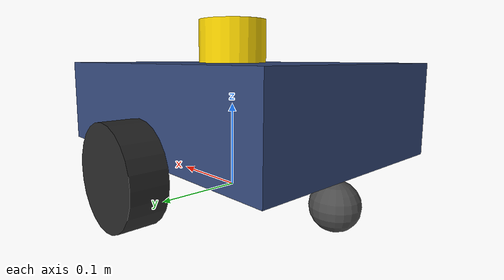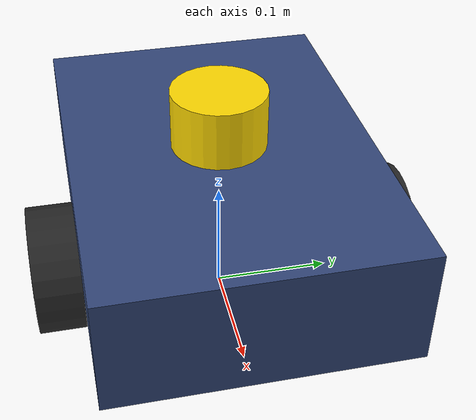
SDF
<?xml version="1.0" ?>
<sdf version="1.6">
  <model name="brutus_robot">

    <!-- ── ANA GÖVDE (CHASSIS) ──────────────────────────────── -->
    <link name="base_link">
      <pose>0 0 0.1 0 0 0</pose>

      <inertial>
        <mass>1.5</mass>
        <inertia>
          <ixx>0.0281</ixx><ixy>0</ixy><ixz>0</ixz>
          <iyy>0.0340</iyy><iyz>0</iyz>
          <izz>0.0540</izz>
        </inertia>
      </inertial>

      <collision name="chassis_collision">
        <geometry><box><size>0.35 0.25 0.10</size></box></geometry>
      </collision>

      <visual name="chassis_visual">
        <geometry><box><size>0.35 0.25 0.10</size></box></geometry>
        <material>
          <!-- Koyu gri-mavi renk - "Brutus" teması -->
          <ambient>0.15 0.20 0.35 1</ambient>
          <diffuse>0.20 0.28 0.48 1</diffuse>
          <specular>0.4 0.4 0.5 1</specular>
        </material>
      </visual>
    </link>

    <!-- ── SOL TEKERLEK ─────────────────────────────────────── -->
    <link name="left_wheel">
      <pose>0.0 0.145 0.04 -1.5707 0 0</pose>

      <inertial>
        <mass>0.25</mass>
        <inertia>
          <ixx>0.000244</ixx><ixy>0</ixy><ixz>0</ixz>
          <iyy>0.000244</iyy><iyz>0</iyz>
          <izz>0.000469</izz>
        </inertia>
      </inertial>

      <collision name="collision">
        <geometry><cylinder><radius>0.055</radius><length>0.04</length></cylinder></geometry>
        <surface><friction><ode><mu>1.0</mu><mu2>1.0</mu2></ode></friction></surface>
      </collision>

      <visual name="visual">
        <geometry><cylinder><radius>0.055</radius><length>0.04</length></cylinder></geometry>
        <material>
          <ambient>0.1 0.1 0.1 1</ambient>
          <diffuse>0.15 0.15 0.15 1</diffuse>
        </material>
      </visual>
    </link>

    <joint name="left_wheel_joint" type="revolute">
      <parent>base_link</parent>
      <child>left_wheel</child>
      <axis>
        <xyz>0 0 1</xyz>
        <limit><lower>-1e+16</lower><upper>1e+16</upper></limit>
      </axis>
    </joint>

    <!-- ── SAĞ TEKERLEK ─────────────────────────────────────── -->
    <link name="right_wheel">
      <pose>0.0 -0.145 0.04 -1.5707 0 0</pose>

      <inertial>
        <mass>0.25</mass>
        <inertia>
          <ixx>0.000244</ixx><ixy>0</ixy><ixz>0</ixz>
          <iyy>0.000244</iyy><iyz>0</iyz>
          <izz>0.000469</izz>
        </inertia>
      </inertial>

      <collision name="collision">
        <geometry><cylinder><radius>0.055</radius><length>0.04</length></cylinder></geometry>
        <surface><friction><ode><mu>1.0</mu><mu2>1.0</mu2></ode></friction></surface>
      </collision>

      <visual name="visual">
        <geometry><cylinder><radius>0.055</radius><length>0.04</length></cylinder></geometry>
        <material>
          <ambient>0.1 0.1 0.1 1</ambient>
          <diffuse>0.15 0.15 0.15 1</diffuse>
        </material>
      </visual>
    </link>

    <joint name="right_wheel_joint" type="revolute">
      <parent>base_link</parent>
      <child>right_wheel</child>
      <axis>
        <xyz>0 0 1</xyz>
        <limit><lower>-1e+16</lower><upper>1e+16</upper></limit>
      </axis>
    </joint>

    <!-- ── CASTER (DESTEK TEKERLEĞİ) ──────────────────────── -->
    <link name="caster_wheel">
      <pose>-0.15 0 0.015 0 0 0</pose>

      <inertial>
        <mass>0.05</mass>
        <inertia>
          <ixx>0.000009</ixx><ixy>0</ixy><ixz>0</ixz>
          <iyy>0.000009</iyy><iyz>0</iyz>
          <izz>0.000009</izz>
        </inertia>
      </inertial>

      <collision name="collision">
        <geometry><sphere><radius>0.025</radius></sphere></geometry>
        <surface>
          <friction>
            <ode><mu>0.0</mu><mu2>0.0</mu2></ode>
          </friction>
        </surface>
      </collision>

      <visual name="visual">
        <geometry><sphere><radius>0.025</radius></sphere></geometry>
        <material><ambient>0.3 0.3 0.3 1</ambient></material>
      </visual>
    </link>

    <joint name="caster_joint" type="ball">
      <parent>base_link</parent>
      <child>caster_wheel</child>
    </joint>

    <!-- ── LIDAR SENSÖRü ────────────────────────────────────── -->
    <!--
      360° tarama, 5Hz, 360 nokta
      Mesafe aralığı: 0.12m - 10.0m
      Topic: /scan (sensor_msgs/LaserScan)
    -->
    <link name="lidar_link">
      <pose>0.0 0.0 0.175 0 0 0</pose>

      <inertial>
        <mass>0.05</mass>
        <inertia>
          <ixx>0.000001</ixx><ixy>0</ixy><ixz>0</ixz>
          <iyy>0.000001</iyy><iyz>0</iyz>
          <izz>0.000001</izz>
        </inertia>
      </inertial>

      <collision name="collision">
        <geometry><cylinder><radius>0.04</radius><length>0.05</length></cylinder></geometry>
      </collision>

      <visual name="visual">
        <geometry><cylinder><radius>0.04</radius><length>0.05</length></cylinder></geometry>
        <material>
          <!-- Lidar: sarı accent rengi -->
          <ambient>0.8 0.7 0.0 1</ambient>
          <diffuse>1.0 0.85 0.0 1</diffuse>
        </material>
      </visual>

      <sensor name="lidar" type="gpu_lidar">
        <always_on>true</always_on>
        <update_rate>5</update_rate>
        <topic>scan</topic>
        <gz_frame_id>lidar_link</gz_frame_id>
        <lidar>
          <scan>
            <horizontal>
              <samples>360</samples>
              <resolution>1</resolution>
              <min_angle>-3.14159</min_angle>
              <max_angle>3.14159</max_angle>
            </horizontal>
          </scan>
          <range>
            <min>0.12</min>
            <max>10.0</max>
            <resolution>0.01</resolution>
          </range>
        </lidar>
      </sensor>
    </link>

    <joint name="lidar_joint" type="fixed">
      <parent>base_link</parent>
      <child>lidar_link</child>
    </joint>

    <!-- ── DİFERANSİYEL SÜRÜŞ PLUGINi ────────────────────── -->
    <!--
      /cmd_vel → geometry_msgs/Twist
      /odom   → nav_msgs/Odometry
    -->
    <plugin
      filename="libignition-gazebo-diff-drive-system.so"
      name="ignition::gazebo::systems::DiffDrive">
      <left_joint>left_wheel_joint</left_joint>
      <right_joint>right_wheel_joint</right_joint>
      <wheel_separation>0.29</wheel_separation>
      <wheel_radius>0.055</wheel_radius>
      <odom_publish_frequency>50</odom_publish_frequency>
      <topic>cmd_vel</topic>
      <odom_topic>odom</odom_topic>
      <frame_id>odom</frame_id>
      <child_frame_id>base_link</child_frame_id>
    </plugin>

  </model>
</sdf>
